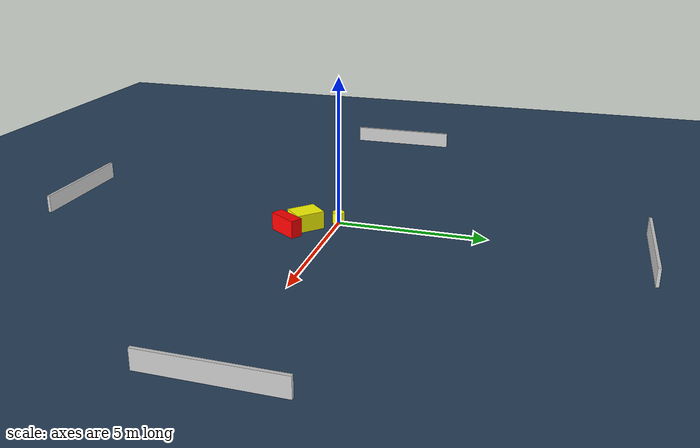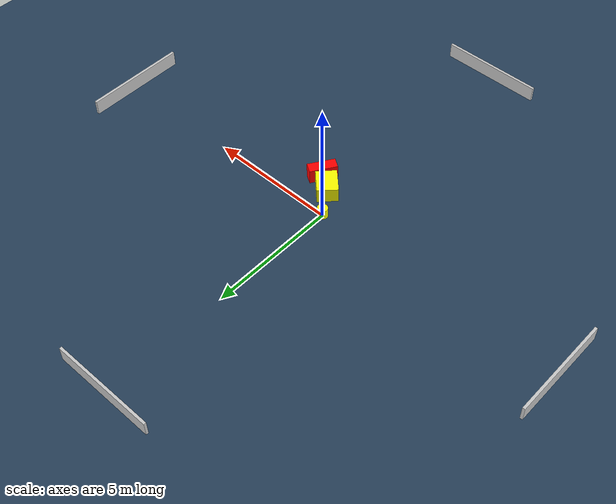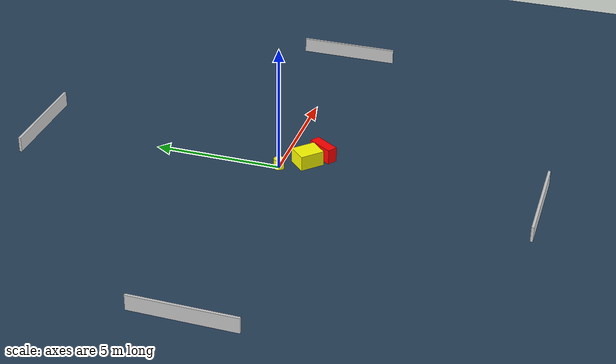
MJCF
<?xml version="1.0" ?>
<mujoco model="generated_environment">
  <option timestep="0.01" integrator="RK4" cone="elliptic"/>
  <default>
    <geom density="1"/>
  </default>
  <asset>
    <texture builtin="gradient" height="3072" name="skybox" rgb1="0.3 0.5 0.7" rgb2="0 0 0" type="skybox" width="512"/>
    <texture builtin="checker" height="300" name="groundplane" rgb1="0.2 0.3 0.4" rgb2="0.1 0.2 0.3" type="2d" width="300"/>
    <material name="groundplane" reflectance="0.2" texrepeat="5 5" texture="groundplane"/>
  </asset>
  <worldbody>
    <light dir="0 0 -1" directional="true" pos="0 0 1.5"/>
    <geom condim="3" friction="0.5 0.005 0.001" material="groundplane" name="floor" pos="0 0 0" size="0 0 0.05" type="plane"/>
    <body name="walls">
      <geom name="wall_1" condim="4" pos="-10.0 0.0 0.3" rgba="0.800000011920929 0.800000011920929 0.800000011920929 1.0" size="0.05 2.0 0.3" type="box"/>
      <geom name="wall_2" condim="4" pos="10.0 0.0 0.3" rgba="0.800000011920929 0.800000011920929 0.800000011920929 1.0" size="0.05 2.0 0.3" type="box"/>
      <geom name="wall_3" condim="4" pos="0.0 -10.0 0.3" rgba="0.800000011920929 0.800000011920929 0.800000011920929 1.0" size="2.0 0.05 0.3" type="box"/>
      <geom name="wall_4" condim="4" pos="0.0 10.0 0.3" rgba="0.800000011920929 0.800000011920929 0.800000011920929 1.0" size="2.0 0.05 0.3" type="box"/>
    </body>
    <body name="robot">
      <joint name="joint_x" type="slide" pos="0 0 0" axis="1 0 0"/>
      <joint name="joint_y" type="slide" pos="0 0 0" axis="0 1 0"/>
      <geom name="robot" type="cylinder" pos="0.0 0.0 0.2" size="0.2 0.2 0.0" mass="5.0" friction="1.0 0.005 0.0001" condim="4" rgba="1.0 1.0 0.0 1.0"/>
    </body>
    <body name="obstacle_1_movable">
      <geom name="obstacle_1_movable" condim="4" pos="0.6524191161476871 -0.9471317454365328 0.3" euler="0 0 225.5256540620785" friction="0.0 0.005 0.001" rgba="1.0 1.0 0.0 1.0" size="0.3958260206512446 0.4831756270850503 0.3" type="box" mass="0.1"/>
      <joint type="free"/>
    </body>
    <body name="obstacle_2_static">
      <geom name="obstacle_2_static" condim="4" pos="1.2816393011552853 -1.3934123029577081 0.3" euler="0 0 147.00864162125703" friction="0.0 0.005 0.001" rgba="1.0 0.0 0.0 1.0" size="0.20394940649811666 0.5344662486891911 0.3" type="box"/>
    </body>
  </worldbody>
  <actuator>
    <motor name="actuator_x" joint="joint_x" gear="1" ctrlrange="-1 1"/>
    <motor name="actuator_y" joint="joint_y" gear="1" ctrlrange="-1 1"/>
  </actuator>
</mujoco>
